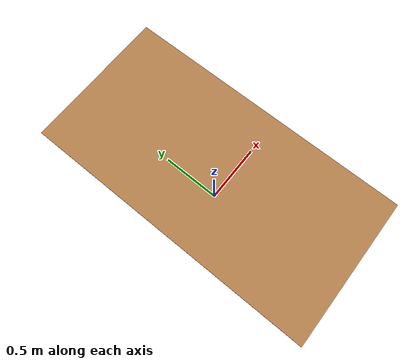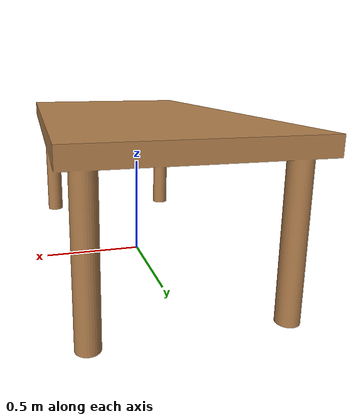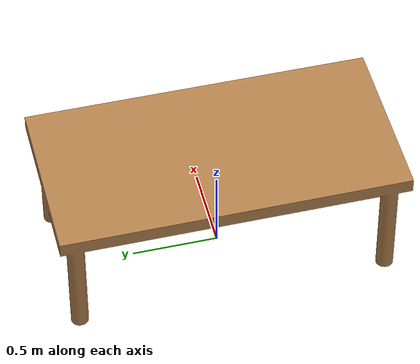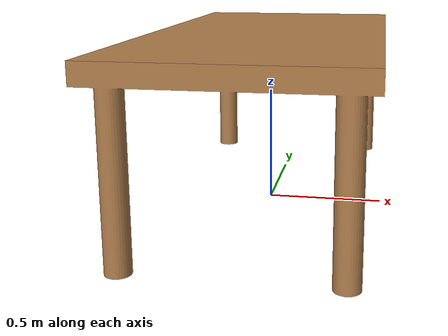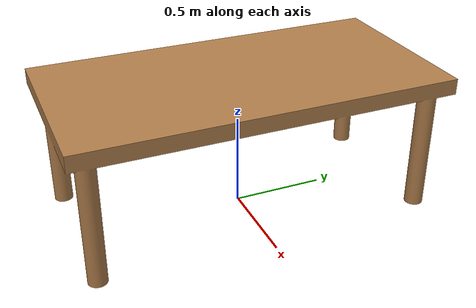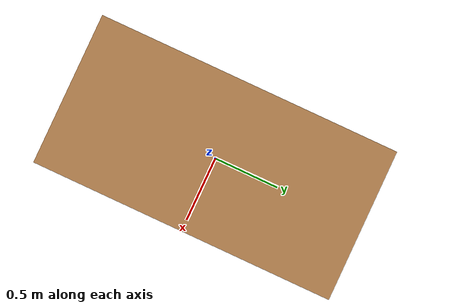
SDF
<?xml version="1.0"?>
<sdf version="1.5">
<model name="simple_table">
  <pose>0 0 0 0 0 0</pose>
  <link name="simple_table">
    <visual name="visual_00">
      <geometry>
        <mesh>
          <uri>file://simple_table/files/simple_table.stl</uri>
          <scale>1 1 1</scale>
        </mesh>
      </geometry>
      <material>
        <script>
          <uri>file://media/materials/scripts/gazebo.material</uri>
          <name>Gazebo/Wood</name>
        </script>
      </material>
    </visual>
    <collision name="simple_table_collision">
      <geometry>
        <mesh>
        <uri>file://simple_table/files/simple_table.stl</uri>
        <scale>1 1 1</scale>
      </mesh>
      </geometry>
    </collision>
  </link>
</model>
</sdf>
